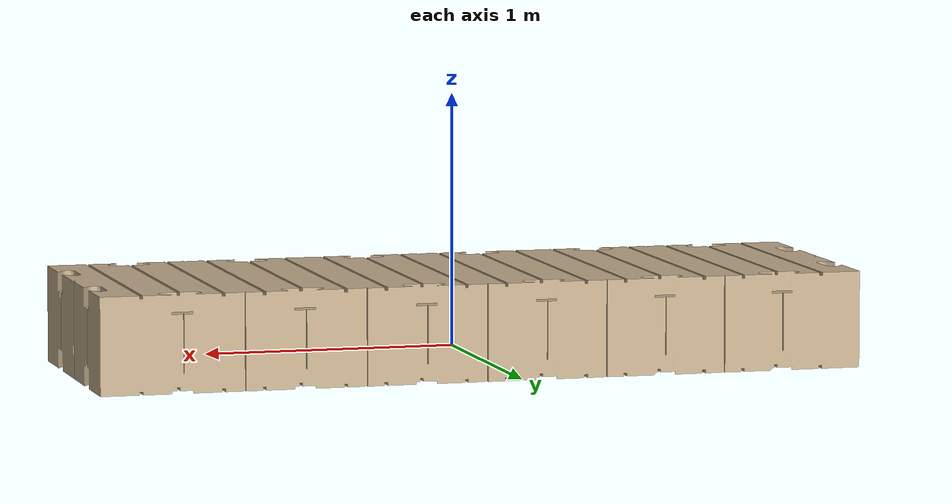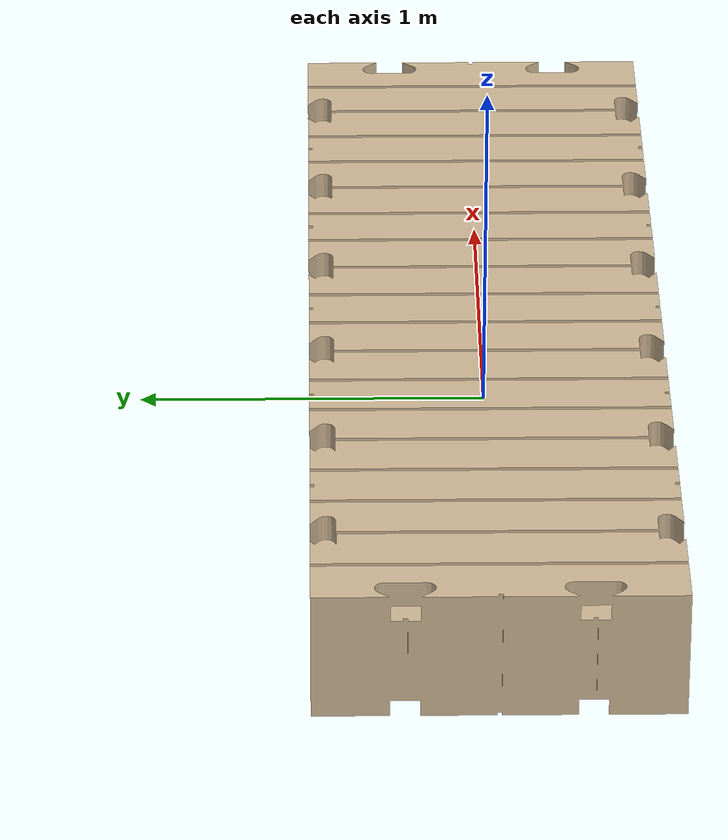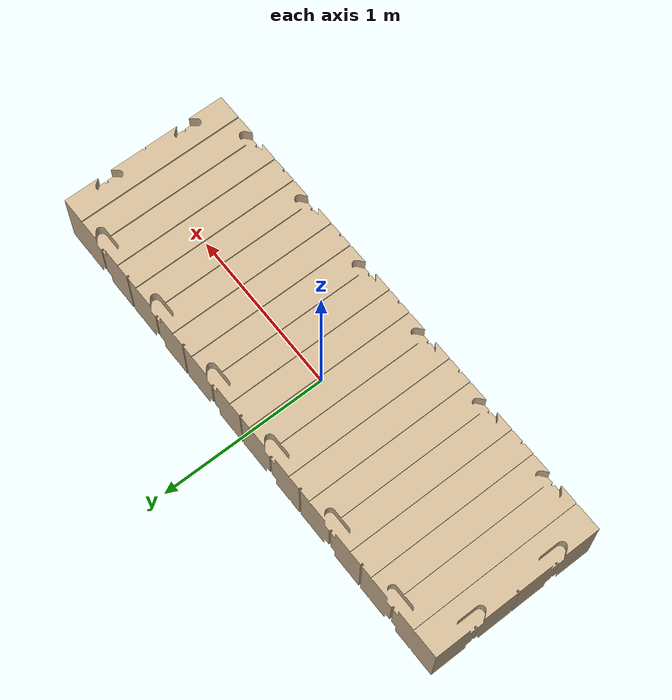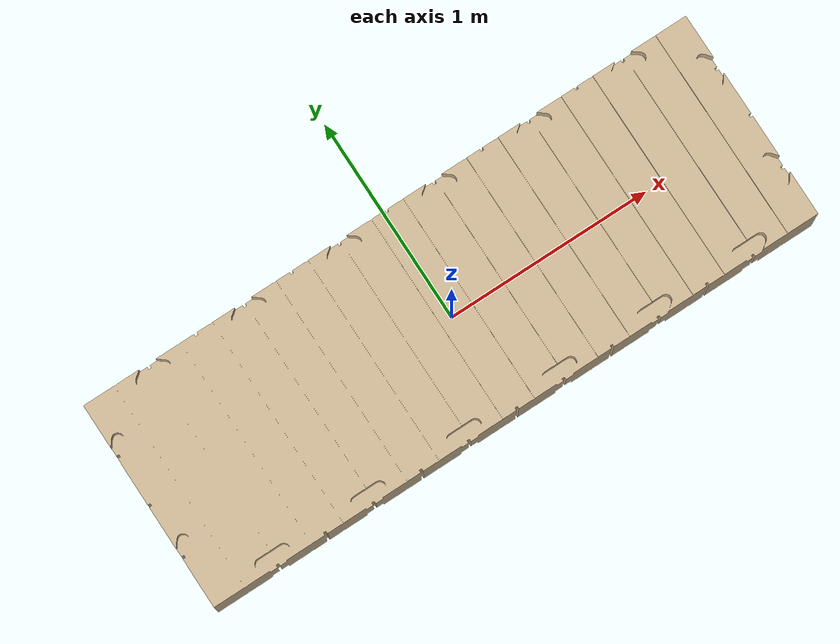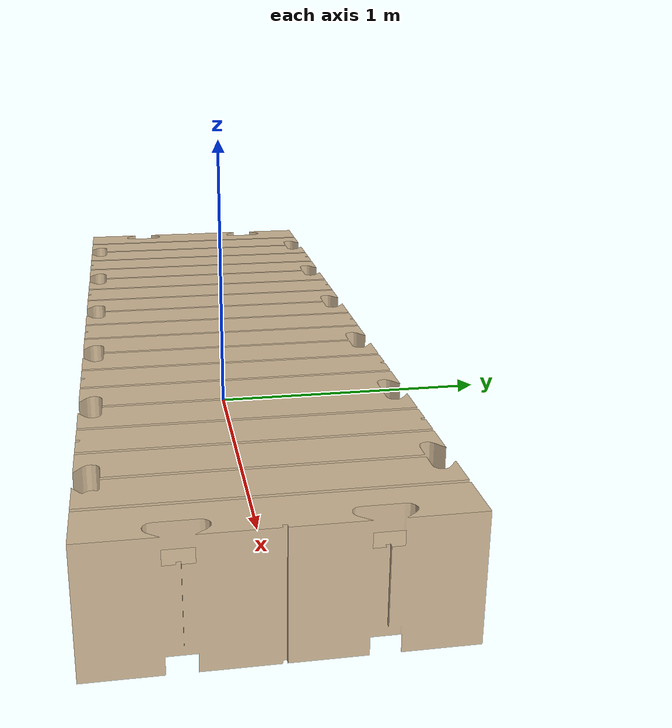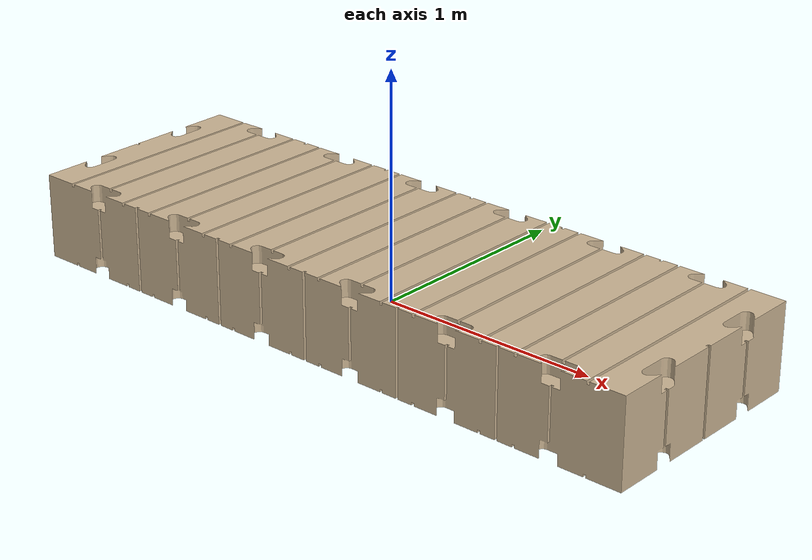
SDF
<?xml version="1.0"?>
<sdf version="1.5">
  <model name="ez_dock">
    <static>true</static>
    <pose>0 0 -0.0762 0 0 0</pose>
    <link name="base_link">
      <visual name="visual">
        <geometry>
           <mesh>
            <uri>file://identify_symbols_and_dock/ez_dock.dae</uri>
          </mesh>
        </geometry>
      </visual>
      <collision name="collision">
        <geometry>
           <mesh>
            <uri>file://identify_symbols_and_dock/ez_dock.dae</uri>
          </mesh>
        </geometry>
      </collision>
    </link>
  </model>
</sdf>
